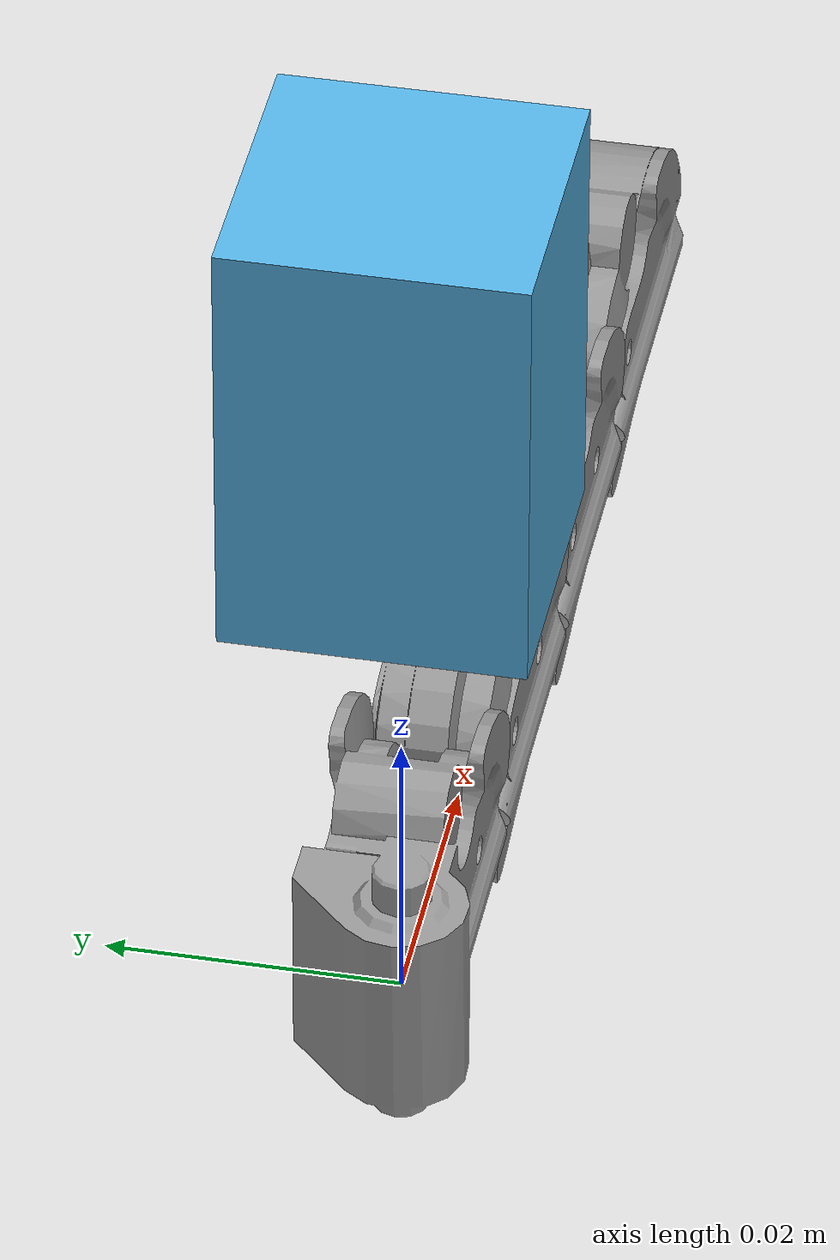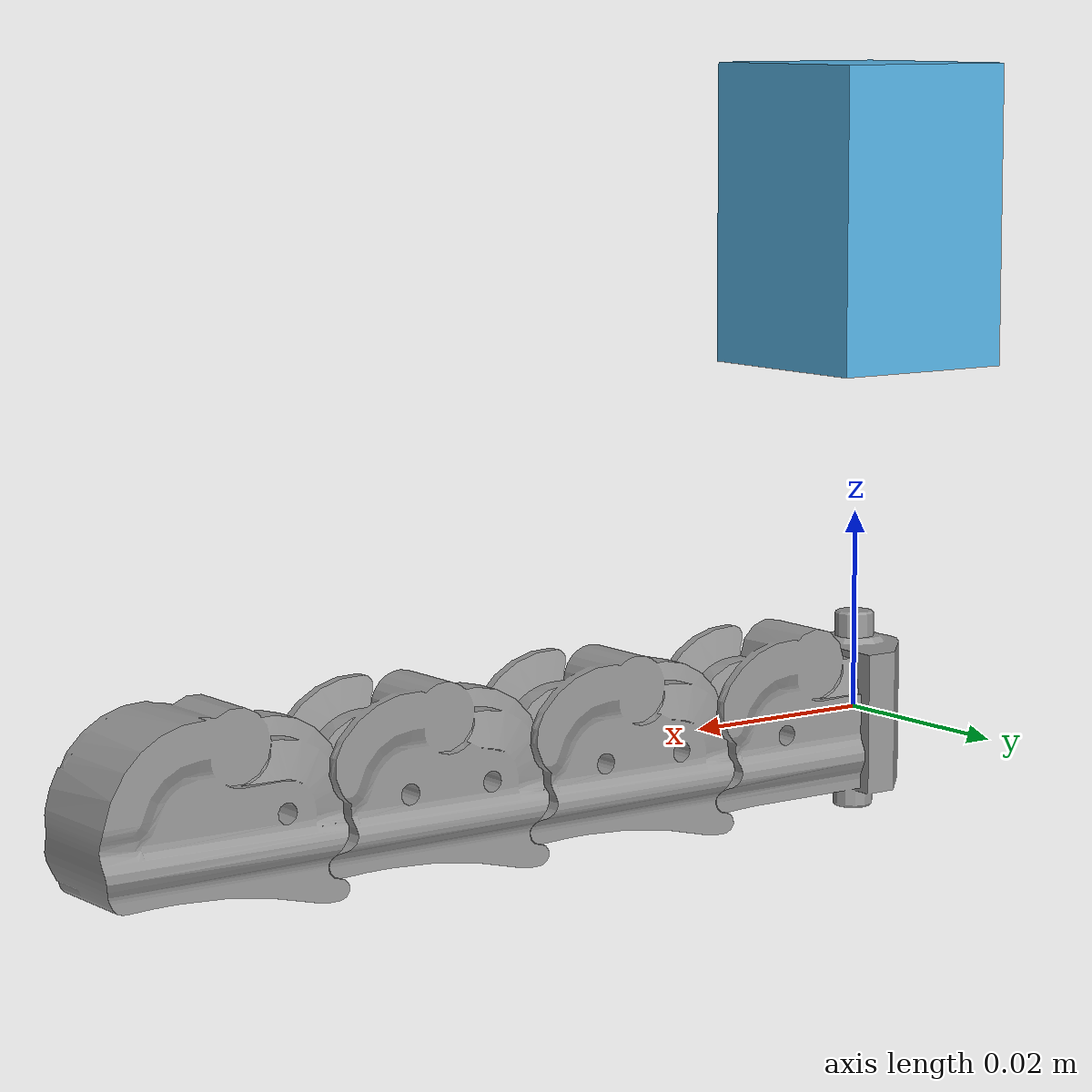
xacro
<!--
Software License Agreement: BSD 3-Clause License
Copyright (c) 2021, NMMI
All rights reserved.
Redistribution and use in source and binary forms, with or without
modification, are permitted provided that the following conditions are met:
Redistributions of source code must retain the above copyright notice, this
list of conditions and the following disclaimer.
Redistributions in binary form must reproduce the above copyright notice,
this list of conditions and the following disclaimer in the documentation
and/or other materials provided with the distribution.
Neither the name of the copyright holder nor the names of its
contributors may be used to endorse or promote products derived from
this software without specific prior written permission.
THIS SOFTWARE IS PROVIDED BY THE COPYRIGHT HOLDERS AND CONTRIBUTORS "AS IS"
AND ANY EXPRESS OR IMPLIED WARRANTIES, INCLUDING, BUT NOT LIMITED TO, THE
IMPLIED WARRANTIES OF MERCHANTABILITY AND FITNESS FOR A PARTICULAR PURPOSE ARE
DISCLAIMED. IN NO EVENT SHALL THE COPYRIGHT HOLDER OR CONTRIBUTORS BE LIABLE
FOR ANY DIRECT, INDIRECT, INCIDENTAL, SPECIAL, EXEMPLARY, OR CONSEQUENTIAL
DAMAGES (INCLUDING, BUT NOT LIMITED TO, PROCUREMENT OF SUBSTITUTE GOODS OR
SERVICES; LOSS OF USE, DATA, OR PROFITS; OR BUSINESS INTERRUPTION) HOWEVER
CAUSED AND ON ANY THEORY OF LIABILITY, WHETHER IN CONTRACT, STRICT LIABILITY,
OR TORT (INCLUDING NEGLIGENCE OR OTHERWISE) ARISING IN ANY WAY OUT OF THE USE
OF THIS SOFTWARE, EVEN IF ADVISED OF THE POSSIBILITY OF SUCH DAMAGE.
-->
<?xml version="1.0"?>

<robot name="test_SHs" xmlns:xacro="http://www.ros.org/wiki/xacro">

	<xacro:include filename="$(find softhands_description)/urdf/test_finger/finger_mimic.xacro"/>
	<xacro:include filename="$(find softhands_description)/urdf/test_finger/finger_simple_trans.xacro"/>

	<link name="world"/>

    <joint name="to_finger" type="fixed">
      <origin xyz="0 0 0" rpy="0 0 0"/>
      <parent link="world"/>
      <child link="test_finger_palm_link"/>
      <limit effort="30" velocity="1.0" lower="-0.785398" upper="0.785398"/>
      <axis xyz="0 0 1" />
    </joint>

    <link name="test_finger_palm_link">
      <inertial>
		<origin xyz="0 0 0"/>
		<mass value="0.01"/>
		<inertia ixx="0.001" ixy="0" ixz="0" iyy="0.001" iyz="0" izz="0.001"/>
      </inertial>
      <visual>
      	<origin xyz="0 0 0.05" rpy="0 0 0"/>
		<geometry>
		  <box size="0.02 0.02 0.03"/>
		</geometry>
      </visual>
      <collision>
      	<origin xyz="0 0 0.05" rpy="0 0 0"/>
		<geometry>
		  <box size="0.02 0.02 0.03"/>
		</geometry>
      </collision>
    </link>

	# Index finger with mimic
	<xacro:finger_mimic type="index"
	   ns = "test_finger"
	   sign = "1"
	   position="0 0 0"
	   orientation="0 0 0">
	</xacro:finger_mimic>

	# Index finger with translation

    # Gazebo custom synergy-plugin
    <gazebo>
		<plugin name="synergy_plugin" filename="libsofthands_synergy_plugin.so">
				<namespace>test_finger</namespace>
				<close_rate>0.001</close_rate> 			# from 0 to 1: 0 - slow closure, 1 - fast closure
				<close_type>power</close_type> 			# hand closure type, "power" or "pinch"
		</plugin>
    </gazebo>

</robot>

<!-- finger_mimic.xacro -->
<robot xmlns:xacro="http://www.ros.org/wiki/xacro">

  <xacro:macro name="finger_mimic" params="type ns sign position orientation">

    <!-- KNUCKLE -->
    <joint name="${ns}_${type}_abd_joint" type="revolute">
      <origin xyz="${position}" rpy="${orientation}"/>
      <parent link="${ns}_palm_link"/>
      <child link="${ns}_${type}_knuckle_link"/>
      <limit effort="30" velocity="1.0" lower="-0.785398" upper="0.785398"/>
      <axis xyz="0 0 1" />
    </joint>

    <link name="${ns}_${type}_knuckle_link">
      <inertial>
	<origin xyz="0.001285644 0 0.000425011"/>
	<mass value="0.009"/>
	<inertia ixx="0.001" ixy="0" ixz="0" iyy="0.001" iyz="0" izz="0.001"/>
      </inertial>
      <xacro:if value="${type == 'index'}">
	<visual>
	  <geometry>
	    <mesh filename="package://softhands_description/meshes/softhands/v2.0/right/qbh_prossimal_std_r_ng.stl" scale="0.001 0.001 0.001"/>
	  </geometry>
	  <material name="qbmove/default"/>
	</visual>
	<collision>
	  <geometry>
	    <mesh filename="package://softhands_description/meshes/softhands/v2.0/right/qbh_prossimal_std_r_ng_collision.stl" scale="0.001 0.001 0.001"/>
	  </geometry>
	</collision>
      </xacro:if>
      <xacro:if value="${type == 'middle'}">
	<visual>
	  <geometry>
	    <mesh filename="package://softhands_description/meshes/softhands/v2.0/right/qbh_prossimal_std_m_ng.stl" scale="0.001 0.001 0.001"/>
	  </geometry>
	  <material name="qbmove/default"/>
	</visual>
	<collision>
	  <geometry>
	    <mesh filename="package://softhands_description/meshes/softhands/v2.0/right/qbh_prossimal_std_m_ng_collision.stl" scale="0.001 0.001 0.001"/>
	  </geometry>
	</collision>
      </xacro:if>
      <xacro:if value="${type == 'ring'}">
	<visual>
	  <geometry>
	    <mesh filename="package://softhands_description/meshes/softhands/v2.0/right/qbh_prossimal_std_l_ng.stl" scale="0.001 0.001 0.001"/>
	  </geometry>
	  <material name="qbmove/default"/>
	</visual>
	<collision>
	  <geometry>
	    <mesh filename="package://softhands_description/meshes/softhands/v2.0/right/qbh_prossimal_std_l_ng_collision.stl" scale="0.001 0.001 0.001"/>
	  </geometry>
	</collision>
      </xacro:if>
      <xacro:if value="${type == 'little'}">
	<visual>
	  <geometry>
	    <mesh filename="package://softhands_description/meshes/softhands/v2.0/right/qbh_prossimal_std_l_ng.stl" scale="0.001 0.001 0.001"/>
	  </geometry>
	  <material name="qbmove/default"/>
	</visual>
	<collision>
	  <geometry>
	    <mesh filename="package://softhands_description/meshes/softhands/v2.0/right/qbh_prossimal_std_l_ng_collision.stl" scale="0.001 0.001 0.001"/>
	  </geometry>
	</collision>
      </xacro:if>
    </link>
    <gazebo reference="${ns}_${type}_knuckle_link">
      <material>Gazebo/Grey</material>
      <selfCollide>true</selfCollide>
    </gazebo>

    <joint name="${ns}_${type}_inner_joint" type="revolute">
      <xacro:if value="${type == 'index'}">
	<origin xyz="0.0146 0.0023 0.0" rpy="1.5707963 0 0"/>
      </xacro:if>
      <xacro:if value="${type == 'middle'}">
	<origin xyz="0.0146 0.0 0.0" rpy="1.5707963 0 0"/>
      </xacro:if>
      <xacro:if value="${type == 'ring'}">
	<origin xyz="0.0146 -0.0023 0.0" rpy="1.5707963 0 0"/>
      </xacro:if>
      <xacro:if value="${type == 'little'}">
	<origin xyz="0.0146 -0.0023 0.0" rpy="1.5707963 0 0"/>
      </xacro:if>
      <parent link="${ns}_${type}_knuckle_link"/>
      <child link="${ns}_${type}_proximal_link_fake"/>
      <limit effort="30" velocity="1.0" lower="-0.785398" upper="0.785398" />
      <axis xyz="0 0 1" />
    </joint>

    <link name="${ns}_${type}_proximal_link_fake">
      <inertial>
	<origin xyz="0 0 0" rpy="0 0 0"/>
	<mass value="0.0001"/>
	<inertia ixx="0.001"  ixy="0"  	    ixz="0"
				iyy="0.001" 	    iyz="0"
						    izz="0.001" />
      </inertial>
    </link>

    <joint name="${ns}_${type}_inner_joint_mimic" type="revolute">
      <origin xyz="0.013 0 0" rpy="0 0 0"/>
      <parent link="${ns}_${type}_proximal_link_fake"/>
      <child link="${ns}_${type}_proximal_link"/>
      <limit effort="30" velocity="1.0" lower="-0.785398" upper="0.785398" />
      <axis xyz="0 0 1" />
    </joint>

     <link name="${ns}_${type}_proximal_link">
      <inertial>
        <origin xyz="0.005074337 0 0"/>
        <mass value="0.005"/>
        <inertia ixx="0.001" ixy="0" ixz="0" iyy="0.001" iyz="0" izz="0.001"/>
      </inertial>
      <visual>
	<geometry>
	  <mesh filename="package://softhands_description/meshes/softhands/v2.0/right/phalanx_std_ng.stl" scale="0.001 0.001 0.001"/>
	</geometry>
	<material name="qbmove/default"/>
	<origin xyz="0 0 0" rpy="0 0 0"/>
      </visual>
      <collision>
        <geometry>
          <mesh filename="package://softhands_description/meshes/softhands/v2.0/right/phalanx_std_ng_collision.stl" scale="0.001 0.001 0.001"/>
        </geometry>
        <origin xyz="0 0 0" rpy="0 0 0"/>
      </collision>
    </link>
    <gazebo reference="${ns}_${type}_proximal_link">
      <material>Gazebo/Grey</material>
      <selfCollide>true</selfCollide>
    </gazebo>

    <joint name="${ns}_${type}_middle_joint" type="revolute">
      <origin xyz="0.009 0 0" rpy="0 0 0"/>
      <parent link="${ns}_${type}_proximal_link"/>
      <child link="${ns}_${type}_middle_link_fake"/>
      <limit effort="30" velocity="1.0" lower="-0.785398" upper="0.785398" />
      <axis xyz="0 0 1" />
    </joint>

    <link name="${ns}_${type}_middle_link_fake">
      <inertial>
	<origin xyz="0 0 0" rpy="0 0 0"/>
	<mass value="0.0001"/>
	<inertia ixx="0.001"  ixy="0"  	    ixz="0"
				iyy="0.001" 	    iyz="0"
						    izz="0.001" />
      </inertial>
    </link>

    <joint name="${ns}_${type}_middle_joint_mimic" type="revolute">
      <origin xyz="0.013 0 0" rpy="0 0 0"/>
      <parent link="${ns}_${type}_middle_link_fake"/>
      <child link="${ns}_${type}_middle_link"/>
      <limit effort="30" velocity="1.0" lower="-0.785398" upper="0.785398" />
      <axis xyz="0 0 1" />
    </joint>

    <link name="${ns}_${type}_middle_link">
      <inertial>
        <origin xyz="0.005074337 0 0"/>
        <mass value="0.005"/>
        <inertia ixx="0.001" ixy="0" ixz="0" iyy="0.001" iyz="0" izz="0.001"/>
      </inertial>
      <visual>
	<geometry>
	  <mesh filename="package://softhands_description/meshes/softhands/v2.0/right/phalanx_std_ng.stl" scale="0.001 0.001 0.001"/>
	</geometry>
	<material name="qbmove/default"/>
	<origin xyz="0 0 0" rpy="0 0 0"/>
      </visual>
      <collision>
        <geometry>
         <mesh filename="package://softhands_description/meshes/softhands/v2.0/right/phalanx_std_ng_collision.stl" scale="0.001 0.001 0.001"/>
        </geometry>
        <origin xyz="0 0 0" rpy="0 0 0"/>
      </collision>
    </link>
    <gazebo reference="${ns}_${type}_middle_link">
      <material>Gazebo/Grey</material>
      <selfCollide>true</selfCollide>
    </gazebo>

    <joint name="${ns}_${type}_outer_joint" type="revolute">
      <origin xyz="0.009 0 0" rpy="0 0 0"/>
      <parent link="${ns}_${type}_middle_link"/>
      <child link="${ns}_${type}_distal_link_fake"/>
      <limit effort="30" velocity="1.0" lower="-0.785398" upper="0.785398" />
      <axis xyz="0 0 1" />
    </joint>

    <link name="${ns}_${type}_distal_link_fake">
     <inertial>
	<origin xyz="0 0 0" rpy="0 0 0"/>
	<mass value="0.0001"/>
	<inertia ixx="0.001"  ixy="0"  	    ixz="0"
				iyy="0.001" 	    iyz="0"
						    izz="0.001" />
      </inertial>
    </link>

    <joint name="${ns}_${type}_outer_joint_mimic" type="revolute">
      <origin xyz="0.013 0 0" rpy="0 0 0"/>
      <parent link="${ns}_${type}_distal_link_fake"/>
      <child link="${ns}_${type}_distal_link"/>
      <limit effort="30" velocity="1.0" lower="-0.785398" upper="0.785398" />
      <axis xyz="0 0 1" />
    </joint>

    <link name="${ns}_${type}_distal_link">
      <inertial>
        <origin xyz="0.005074337 0 0"/>
        <mass value="0.005"/>
        <inertia ixx="0.001" ixy="0" ixz="0" iyy="0.001" iyz="0" izz="0.001"/>
      </inertial>
      <visual>
	<geometry>
	  <mesh filename="package://softhands_description/meshes/softhands/v2.0/right/qb_distal_ng.stl" scale="0.001 0.001 0.001"/>
	</geometry>
	<material name="qbmove/default"/>
	<origin xyz="0 0 0" rpy="0 0 0"/>
      </visual>
      <collision>
        <geometry>
          <mesh filename="package://softhands_description/meshes/softhands/v2.0/right/qb_distal_ng_collision.stl" scale="0.001 0.001 0.001"/>
        </geometry>
        <origin xyz="0 0 0" rpy="0 0 0"/>
      </collision>
    </link>
    <gazebo reference="${ns}_${type}_distal_link">
      <material>Gazebo/Grey</material>
      <selfCollide>true</selfCollide>
      <kp value="1e4" />
      <kd value="1e2" />
    </gazebo>

    # GAZEBO PLUGIN
    <gazebo>
      <plugin name="${type}_sh_abd_plugin" filename="libsofthands_plugin.so">
	  <joint>${ns}_${type}_abd_joint</joint>
	  <namespace>${ns}</namespace>
	  <stiffness>20</stiffness>
      </plugin>
    </gazebo>
    <gazebo>
      <plugin name="${type}_sh_inn_plugin" filename="libsofthands_mimic_two_plugin.so">
	  <joint>${ns}_${type}_inner_joint</joint>
	  <namespace>${ns}</namespace>
	  <stiffness>10</stiffness>
      </plugin>
    </gazebo>
    <gazebo>
      <plugin name="${type}_sh_mid_plugin" filename="libsofthands_mimic_two_plugin.so">
	  <joint>${ns}_${type}_middle_joint</joint>
	  <namespace>${ns}</namespace>
	  <stiffness>10</stiffness>
      </plugin>
    </gazebo>
    <gazebo>
      <plugin name="${type}_sh_out_plugin" filename="libsofthands_mimic_two_plugin.so">
	  <joint>${ns}_${type}_outer_joint</joint>
	  <namespace>${ns}</namespace>
	  <stiffness>10</stiffness>
      </plugin>
    </gazebo>

  </xacro:macro>

</robot>
